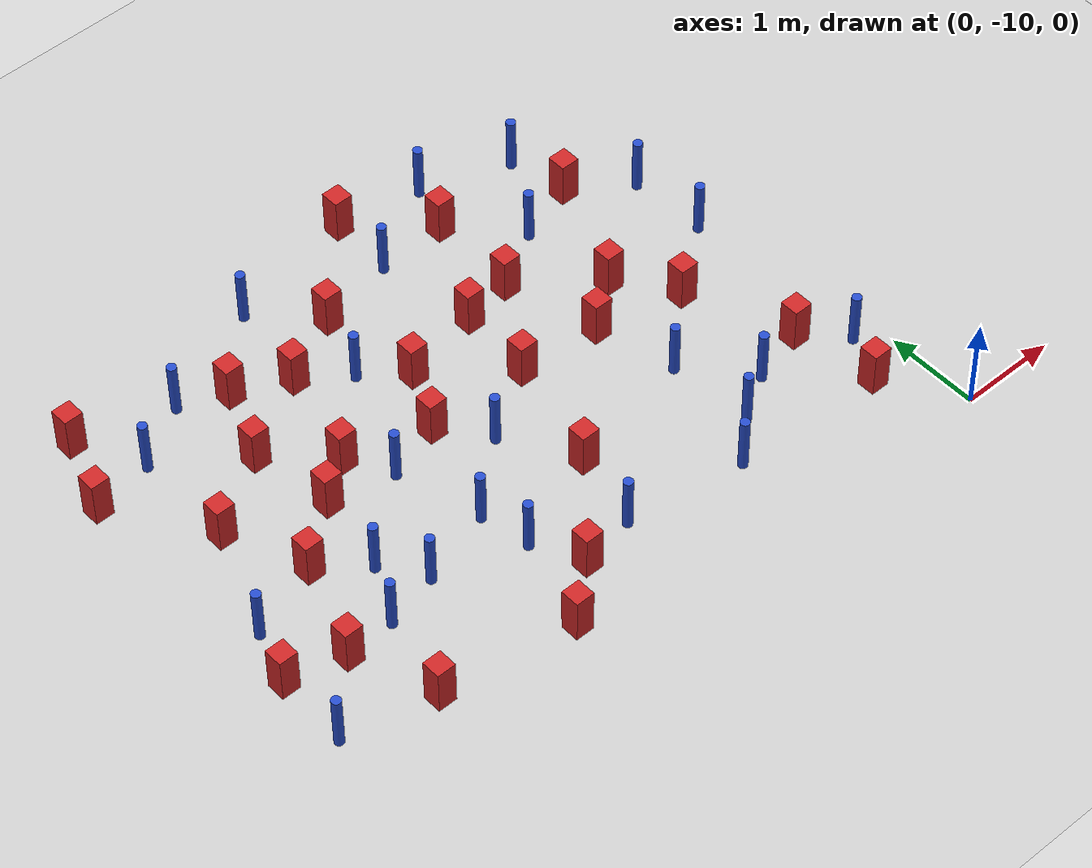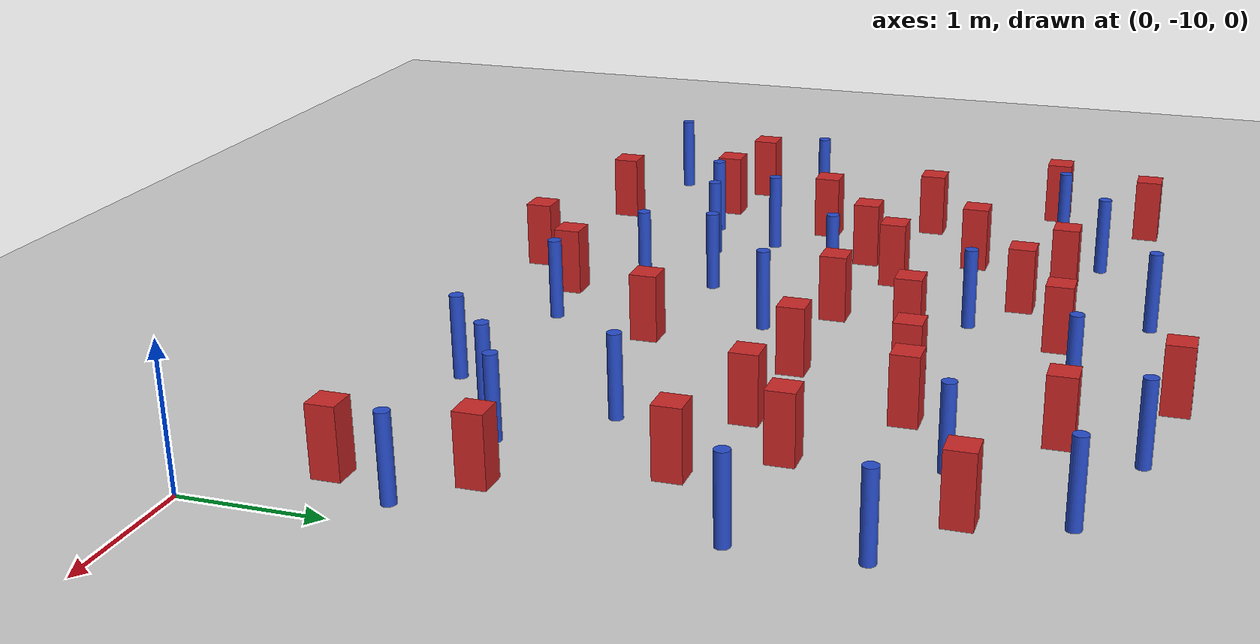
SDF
<sdf version="1.6">
 <world name="default">
  <model name="ground_plane">
   <static>1</static>
   <link name="link">
    <collision name="collision">
     <geometry><plane><normal>0 0 1</normal><size>100 100</size></plane></geometry>
     <surface><friction><ode><mu>100</mu><mu2>50</mu2></ode></friction></surface>
    </collision>
    <visual name="visual">
     <cast_shadows>0</cast_shadows>
     <geometry><plane><normal>0 0 1</normal><size>100 100</size></plane></geometry>
     <material>
      <ambient>1.0 1.0 1.0 1.0</ambient>
      <diffuse>0.8 0.8 0.8 1.0</diffuse>
      <specular>0.01 0.01 0.01 1.000000</specular>
     </material>
    </visual>
   </link>
  </model>
  <model name="square_post_obstacle2">
   <static>true</static>
   <pose>-1.50206599766 -6.68306396483 8.22691968438e-08 7.2212513382e-06 -7.54495500217e-07 2.29674213826e-05</pose>
   <link name="link">
    <pose>0 0 0.25 0 -0 0</pose>
    <inertial>
     <mass>100</mass>
     <inertia>
      <ixx>0.166667</ixx>
      <ixy>0</ixy>
      <ixz>0</ixz>
      <iyy>0.166667</iyy>
      <iyz>0</iyz>
      <izz>0.166667</izz>
     </inertia>
    </inertial>
    <collision name="collision"><geometry><box><size>.2 .2 .5</size></box></geometry></collision>
    <visual name="visual">
     <geometry><box><size>.2 .2 .5</size></box></geometry>
     <material>
      <script><name>Gazebo/Red</name><uri>file://media/materials/scripts/gazebo.material</uri></script>
     </material>
    </visual>
   </link>
  </model>
  <model name="pole_obstacle1">
   <static>true</static>
   <pose>-2.03950707412 -4.55169330116 2.88873142074e-08 -9.90536689575e-09 4.60219948995e-07 -1.20965994956e-07</pose>
   <link name="link">
    <pose>0 0 0.3 0 -0 0</pose>
    <inertial>
     <mass>1</mass>
     <inertia><ixx>0.145833</ixx><ixy>0</ixy><ixz>0</ixz><iyy>0.145833</iyy><iyz>0</iyz><izz>0.125</izz></inertia>
    </inertial>
    <collision name="collision">
     <geometry><cylinder><radius>0.05</radius><length>.6</length></cylinder></geometry>
    </collision>
    <visual name="visual">
     <geometry><cylinder><radius>0.05</radius><length>.6</length></cylinder></geometry>
     <material>
      <script><name>Gazebo/Blue</name><uri>file://media/materials/scripts/gazebo.material</uri></script>
     </material>
    </visual>
   </link>
  </model>
  <model name="square_post_obstacle4">
   <static>true</static>
   <pose>-3.1690122181 -8.15503335935 8.22691968438e-08 7.2212513382e-06 -7.54495500217e-07 2.29674213826e-05</pose>
   <link name="link">
    <pose>0 0 0.25 0 -0 0</pose>
    <inertial>
     <mass>100</mass>
     <inertia>
      <ixx>0.166667</ixx>
      <ixy>0</ixy>
      <ixz>0</ixz>
      <iyy>0.166667</iyy>
      <iyz>0</iyz>
      <izz>0.166667</izz>
     </inertia>
    </inertial>
    <collision name="collision"><geometry><box><size>.2 .2 .5</size></box></geometry></collision>
    <visual name="visual">
     <geometry><box><size>.2 .2 .5</size></box></geometry>
     <material>
      <script><name>Gazebo/Red</name><uri>file://media/materials/scripts/gazebo.material</uri></script>
     </material>
    </visual>
   </link>
  </model>
  <model name="square_post_obstacle12">
   <static>true</static>
   <pose>-2.00418320931 -7.06071781148 8.22691968438e-08 7.22125133819e-06 -7.54495500217e-07 2.29674213826e-05</pose>
   <link name="link">
    <pose>0 0 0.25 0 -0 0</pose>
    <inertial>
     <mass>100</mass>
     <inertia>
      <ixx>0.166667</ixx>
      <ixy>0</ixy>
      <ixz>0</ixz>
      <iyy>0.166667</iyy>
      <iyz>0</iyz>
      <izz>0.166667</izz>
     </inertia>
    </inertial>
    <collision name="collision"><geometry><box><size>.2 .2 .5</size></box></geometry></collision>
    <visual name="visual">
     <geometry><box><size>.2 .2 .5</size></box></geometry>
     <material>
      <script><name>Gazebo/Red</name><uri>file://media/materials/scripts/gazebo.material</uri></script>
     </material>
    </visual>
   </link>
  </model>
  <model name="pole_obstacle11">
   <static>true</static>
   <pose>-6.13879291941 -5.5250848036 2.88873142074e-08 -9.90536690842e-09 4.60219948965e-07 -1.20965994976e-07</pose>
   <link name="link">
    <pose>0 0 0.3 0 -0 0</pose>
    <inertial>
     <mass>1</mass>
     <inertia><ixx>0.145833</ixx><ixy>0</ixy><ixz>0</ixz><iyy>0.145833</iyy><iyz>0</iyz><izz>0.125</izz></inertia>
    </inertial>
    <collision name="collision">
     <geometry><cylinder><radius>0.05</radius><length>.6</length></cylinder></geometry>
    </collision>
    <visual name="visual">
     <geometry><cylinder><radius>0.05</radius><length>.6</length></cylinder></geometry>
     <material>
      <script><name>Gazebo/Blue</name><uri>file://media/materials/scripts/gazebo.material</uri></script>
     </material>
    </visual>
   </link>
  </model>
  <model name="pole_obstacle13">
   <static>true</static>
   <pose>-5.07513045503 -8.23710917946 2.88873142074e-08 -9.9053668967e-09 4.60219948993e-07 -1.20965994957e-07</pose>
   <link name="link">
    <pose>0 0 0.3 0 -0 0</pose>
    <inertial>
     <mass>1</mass>
     <inertia><ixx>0.145833</ixx><ixy>0</ixy><ixz>0</ixz><iyy>0.145833</iyy><iyz>0</iyz><izz>0.125</izz></inertia>
    </inertial>
    <collision name="collision">
     <geometry><cylinder><radius>0.05</radius><length>.6</length></cylinder></geometry>
    </collision>
    <visual name="visual">
     <geometry><cylinder><radius>0.05</radius><length>.6</length></cylinder></geometry>
     <material>
      <script><name>Gazebo/Blue</name><uri>file://media/materials/scripts/gazebo.material</uri></script>
     </material>
    </visual>
   </link>
  </model>
  <model name="pole_obstacle14">
   <static>true</static>
   <pose>-1.77880233781 -7.88300365105 2.88873142074e-08 -9.90536689852e-09 4.60219948989e-07 -1.2096599496e-07</pose>
   <link name="link">
    <pose>0 0 0.3 0 -0 0</pose>
    <inertial>
     <mass>1</mass>
     <inertia><ixx>0.145833</ixx><ixy>0</ixy><ixz>0</ixz><iyy>0.145833</iyy><iyz>0</iyz><izz>0.125</izz></inertia>
    </inertial>
    <collision name="collision">
     <geometry><cylinder><radius>0.05</radius><length>.6</length></cylinder></geometry>
    </collision>
    <visual name="visual">
     <geometry><cylinder><radius>0.05</radius><length>.6</length></cylinder></geometry>
     <material>
      <script><name>Gazebo/Blue</name><uri>file://media/materials/scripts/gazebo.material</uri></script>
     </material>
    </visual>
   </link>
  </model>
  <model name="pole_obstacle35">
   <static>true</static>
   <pose>-1.12154431042 -4.86890500265 2.88873142074e-08 -9.90536689852e-09 4.60219948989e-07 -1.2096599496e-07</pose>
   <link name="link">
    <pose>0 0 0.3 0 -0 0</pose>
    <inertial>
     <mass>1</mass>
     <inertia><ixx>0.145833</ixx><ixy>0</ixy><ixz>0</ixz><iyy>0.145833</iyy><iyz>0</iyz><izz>0.125</izz></inertia>
    </inertial>
    <collision name="collision">
     <geometry><cylinder><radius>0.05</radius><length>.6</length></cylinder></geometry>
    </collision>
    <visual name="visual">
     <geometry><cylinder><radius>0.05</radius><length>.6</length></cylinder></geometry>
     <material>
      <script><name>Gazebo/Blue</name><uri>file://media/materials/scripts/gazebo.material</uri></script>
     </material>
    </visual>
   </link>
  </model>
  <model name="pole_obstacle36">
   <static>true</static>
   <pose>-4.0327225855 -5.96429115288 2.88873142074e-08 -9.90536691069e-09 4.6021994896e-07 -1.20965994979e-07</pose>
   <link name="link">
    <pose>0 0 0.3 0 -0 0</pose>
    <inertial>
     <mass>1</mass>
     <inertia><ixx>0.145833</ixx><ixy>0</ixy><ixz>0</ixz><iyy>0.145833</iyy><iyz>0</iyz><izz>0.125</izz></inertia>
    </inertial>
    <collision name="collision">
     <geometry><cylinder><radius>0.05</radius><length>.6</length></cylinder></geometry>
    </collision>
    <visual name="visual">
     <geometry><cylinder><radius>0.05</radius><length>.6</length></cylinder></geometry>
     <material>
      <script><name>Gazebo/Blue</name><uri>file://media/materials/scripts/gazebo.material</uri></script>
     </material>
    </visual>
   </link>
  </model>
  <model name="pole_obstacle37">
   <static>true</static>
   <pose>-6.58687986525 -7.69311509264 2.88873142074e-08 -9.90536690842e-09 4.60219948965e-07 -1.20965994976e-07</pose>
   <link name="link">
    <pose>0 0 0.3 0 -0 0</pose>
    <inertial>
     <mass>1</mass>
     <inertia><ixx>0.145833</ixx><ixy>0</ixy><ixz>0</ixz><iyy>0.145833</iyy><iyz>0</iyz><izz>0.125</izz></inertia>
    </inertial>
    <collision name="collision">
     <geometry><cylinder><radius>0.05</radius><length>.6</length></cylinder></geometry>
    </collision>
    <visual name="visual">
     <geometry><cylinder><radius>0.05</radius><length>.6</length></cylinder></geometry>
     <material>
      <script><name>Gazebo/Blue</name><uri>file://media/materials/scripts/gazebo.material</uri></script>
     </material>
    </visual>
   </link>
  </model>
  <model name="square_post_obstacle38">
   <static>true</static>
   <pose>-2.26851469098 -6.07438547937 8.22691968438e-08 7.2212513382e-06 -7.54495500217e-07 2.29674213826e-05</pose>
   <link name="link">
    <pose>0 0 0.25 0 -0 0</pose>
    <inertial>
     <mass>100</mass>
     <inertia>
      <ixx>0.166667</ixx>
      <ixy>0</ixy>
      <ixz>0</ixz>
      <iyy>0.166667</iyy>
      <iyz>0</iyz>
      <izz>0.166667</izz>
     </inertia>
    </inertial>
    <collision name="collision"><geometry><box><size>.2 .2 .5</size></box></geometry></collision>
    <visual name="visual">
     <geometry><box><size>.2 .2 .5</size></box></geometry>
     <material>
      <script><name>Gazebo/Red</name><uri>file://media/materials/scripts/gazebo.material</uri></script>
     </material>
    </visual>
   </link>
  </model>
  <model name="pole_obstacle45">
   <static>true</static>
   <pose>-0.405635060372 -5.90418708495 2.88873142074e-08 -9.90536689683e-09 4.60219948993e-07 -1.20965994957e-07</pose>
   <link name="link">
    <pose>0 0 0.3 0 -0 0</pose>
    <inertial>
     <mass>1</mass>
     <inertia><ixx>0.145833</ixx><ixy>0</ixy><ixz>0</ixz><iyy>0.145833</iyy><iyz>0</iyz><izz>0.125</izz></inertia>
    </inertial>
    <collision name="collision">
     <geometry><cylinder><radius>0.05</radius><length>.6</length></cylinder></geometry>
    </collision>
    <visual name="visual">
     <geometry><cylinder><radius>0.05</radius><length>.6</length></cylinder></geometry>
     <material>
      <script><name>Gazebo/Blue</name><uri>file://media/materials/scripts/gazebo.material</uri></script>
     </material>
    </visual>
   </link>
  </model>
  <model name="square_post_obstacle44">
   <static>true</static>
   <pose>-1.01084193796 -5.50591038556 8.22691968438e-08 7.2212513382e-06 -7.54495500217e-07 2.29674213826e-05</pose>
   <link name="link">
    <pose>0 0 0.25 0 -0 0</pose>
    <inertial>
     <mass>100</mass>
     <inertia>
      <ixx>0.166667</ixx>
      <ixy>0</ixy>
      <ixz>0</ixz>
      <iyy>0.166667</iyy>
      <iyz>0</iyz>
      <izz>0.166667</izz>
     </inertia>
    </inertial>
    <collision name="collision"><geometry><box><size>.2 .2 .5</size></box></geometry></collision>
    <visual name="visual">
     <geometry><box><size>.2 .2 .5</size></box></geometry>
     <material>
      <script><name>Gazebo/Red</name><uri>file://media/materials/scripts/gazebo.material</uri></script>
     </material>
    </visual>
   </link>
  </model>
  <model name="square_post_obstacle45">
   <static>true</static>
   <pose>-3.64040078298 -6.33008832239 8.22691968438e-08 7.2212513382e-06 -7.54495500217e-07 2.29674213826e-05</pose>
   <link name="link">
    <pose>0 0 0.25 0 -0 0</pose>
    <inertial>
     <mass>100</mass>
     <inertia>
      <ixx>0.166667</ixx>
      <ixy>0</ixy>
      <ixz>0</ixz>
      <iyy>0.166667</iyy>
      <iyz>0</iyz>
      <izz>0.166667</izz>
     </inertia>
    </inertial>
    <collision name="collision"><geometry><box><size>.2 .2 .5</size></box></geometry></collision>
    <visual name="visual">
     <geometry><box><size>.2 .2 .5</size></box></geometry>
     <material>
      <script><name>Gazebo/Red</name><uri>file://media/materials/scripts/gazebo.material</uri></script>
     </material>
    </visual>
   </link>
  </model>
  <model name="pole_obstacle50">
   <static>true</static>
   <pose>-0.360635065036 -6.72433066485 2.88873142074e-08 -9.90536689683e-09 4.60219948993e-07 -1.20965994957e-07</pose>
   <link name="link">
    <pose>0 0 0.3 0 -0 0</pose>
    <inertial>
     <mass>1</mass>
     <inertia><ixx>0.145833</ixx><ixy>0</ixy><ixz>0</ixz><iyy>0.145833</iyy><iyz>0</iyz><izz>0.125</izz></inertia>
    </inertial>
    <collision name="collision">
     <geometry><cylinder><radius>0.05</radius><length>.6</length></cylinder></geometry>
    </collision>
    <visual name="visual">
     <geometry><cylinder><radius>0.05</radius><length>.6</length></cylinder></geometry>
     <material>
      <script><name>Gazebo/Blue</name><uri>file://media/materials/scripts/gazebo.material</uri></script>
     </material>
    </visual>
   </link>
  </model>
  <model name="square_post_obstacle53">
   <static>true</static>
   <pose>-5.21181510723 -6.98321677522 8.22691968438e-08 7.22125133819e-06 -7.54495500217e-07 2.29674213826e-05</pose>
   <link name="link">
    <pose>0 0 0.25 0 -0 0</pose>
    <inertial>
     <mass>100</mass>
     <inertia>
      <ixx>0.166667</ixx>
      <ixy>0</ixy>
      <ixz>0</ixz>
      <iyy>0.166667</iyy>
      <iyz>0</iyz>
      <izz>0.166667</izz>
     </inertia>
    </inertial>
    <collision name="collision"><geometry><box><size>.2 .2 .5</size></box></geometry></collision>
    <visual name="visual">
     <geometry><box><size>.2 .2 .5</size></box></geometry>
     <material>
      <script><name>Gazebo/Red</name><uri>file://media/materials/scripts/gazebo.material</uri></script>
     </material>
    </visual>
   </link>
  </model>
  <model name="square_post_obstacle72">
   <static>true</static>
   <pose>-6.49690147739 -4.86832967605 8.22691968438e-08 7.22125133819e-06 -7.54495500217e-07 2.29674213826e-05</pose>
   <link name="link">
    <pose>0 0 0.25 0 -0 0</pose>
    <inertial>
     <mass>100</mass>
     <inertia>
      <ixx>0.166667</ixx>
      <ixy>0</ixy>
      <ixz>0</ixz>
      <iyy>0.166667</iyy>
      <iyz>0</iyz>
      <izz>0.166667</izz>
     </inertia>
    </inertial>
    <collision name="collision"><geometry><box><size>.2 .2 .5</size></box></geometry></collision>
    <visual name="visual">
     <geometry><box><size>.2 .2 .5</size></box></geometry>
     <material>
      <script><name>Gazebo/Red</name><uri>file://media/materials/scripts/gazebo.material</uri></script>
     </material>
    </visual>
   </link>
  </model>
  <model name="pole_obstacle75">
   <static>true</static>
   <pose>-4.32951539088 -4.67594757049 2.88873142074e-08 -9.90536690842e-09 4.60219948965e-07 -1.20965994976e-07</pose>
   <link name="link">
    <pose>0 0 0.3 0 -0 0</pose>
    <inertial>
     <mass>1</mass>
     <inertia><ixx>0.145833</ixx><ixy>0</ixy><ixz>0</ixz><iyy>0.145833</iyy><iyz>0</iyz><izz>0.125</izz></inertia>
    </inertial>
    <collision name="collision">
     <geometry><cylinder><radius>0.05</radius><length>.6</length></cylinder></geometry>
    </collision>
    <visual name="visual">
     <geometry><cylinder><radius>0.05</radius><length>.6</length></cylinder></geometry>
     <material>
      <script><name>Gazebo/Blue</name><uri>file://media/materials/scripts/gazebo.material</uri></script>
     </material>
    </visual>
   </link>
  </model>
  <model name="pole_obstacle78">
   <static>true</static>
   <pose>-1.63405915105 -5.69855744339 2.88873142074e-08 -9.90536689852e-09 4.60219948989e-07 -1.2096599496e-07</pose>
   <link name="link">
    <pose>0 0 0.3 0 -0 0</pose>
    <inertial>
     <mass>1</mass>
     <inertia><ixx>0.145833</ixx><ixy>0</ixy><ixz>0</ixz><iyy>0.145833</iyy><iyz>0</iyz><izz>0.125</izz></inertia>
    </inertial>
    <collision name="collision">
     <geometry><cylinder><radius>0.05</radius><length>.6</length></cylinder></geometry>
    </collision>
    <visual name="visual">
     <geometry><cylinder><radius>0.05</radius><length>.6</length></cylinder></geometry>
     <material>
      <script><name>Gazebo/Blue</name><uri>file://media/materials/scripts/gazebo.material</uri></script>
     </material>
    </visual>
   </link>
  </model>
  <model name="square_post_obstacle78">
   <static>true</static>
   <pose>-5.05144092422 -5.38398361425 8.22691968438e-08 7.22125133819e-06 -7.54495500217e-07 2.29674213826e-05</pose>
   <link name="link">
    <pose>0 0 0.25 0 -0 0</pose>
    <inertial>
     <mass>100</mass>
     <inertia>
      <ixx>0.166667</ixx>
      <ixy>0</ixy>
      <ixz>0</ixz>
      <iyy>0.166667</iyy>
      <iyz>0</iyz>
      <izz>0.166667</izz>
     </inertia>
    </inertial>
    <collision name="collision"><geometry><box><size>.2 .2 .5</size></box></geometry></collision>
    <visual name="visual">
     <geometry><box><size>.2 .2 .5</size></box></geometry>
     <material>
      <script><name>Gazebo/Red</name><uri>file://media/materials/scripts/gazebo.material</uri></script>
     </material>
    </visual>
   </link>
  </model>
  <model name="pole_obstacle83">
   <static>true</static>
   <pose>-4.52612757166 -7.11670466127 2.88873142074e-08 -9.90536690842e-09 4.60219948965e-07 -1.20965994976e-07</pose>
   <link name="link">
    <pose>0 0 0.3 0 -0 0</pose>
    <inertial>
     <mass>1</mass>
     <inertia><ixx>0.145833</ixx><ixy>0</ixy><ixz>0</ixz><iyy>0.145833</iyy><iyz>0</iyz><izz>0.125</izz></inertia>
    </inertial>
    <collision name="collision">
     <geometry><cylinder><radius>0.05</radius><length>.6</length></cylinder></geometry>
    </collision>
    <visual name="visual">
     <geometry><cylinder><radius>0.05</radius><length>.6</length></cylinder></geometry>
     <material>
      <script><name>Gazebo/Blue</name><uri>file://media/materials/scripts/gazebo.material</uri></script>
     </material>
    </visual>
   </link>
  </model>
  <model name="square_post_obstacle86">
   <static>true</static>
   <pose>-4.46939758915 -9.49752148642 8.22691968438e-08 7.22125133819e-06 -7.54495500217e-07 2.29674213826e-05</pose>
   <link name="link">
    <pose>0 0 0.25 0 -0 0</pose>
    <inertial>
     <mass>100</mass>
     <inertia>
      <ixx>0.166667</ixx>
      <ixy>0</ixy>
      <ixz>0</ixz>
      <iyy>0.166667</iyy>
      <iyz>0</iyz>
      <izz>0.166667</izz>
     </inertia>
    </inertial>
    <collision name="collision"><geometry><box><size>.2 .2 .5</size></box></geometry></collision>
    <visual name="visual">
     <geometry><box><size>.2 .2 .5</size></box></geometry>
     <material>
      <script><name>Gazebo/Red</name><uri>file://media/materials/scripts/gazebo.material</uri></script>
     </material>
    </visual>
   </link>
  </model>
  <model name="pole_obstacle105">
   <static>true</static>
   <pose>-0.278596874031 -8.74142404617 2.88873142074e-08 -9.90536690955e-09 4.60219948963e-07 -1.20965994979e-07</pose>
   <link name="link">
    <pose>0 0 0.3 0 -0 0</pose>
    <inertial>
     <mass>1</mass>
     <inertia><ixx>0.145833</ixx><ixy>0</ixy><ixz>0</ixz><iyy>0.145833</iyy><iyz>0</iyz><izz>0.125</izz></inertia>
    </inertial>
    <collision name="collision">
     <geometry><cylinder><radius>0.05</radius><length>.6</length></cylinder></geometry>
    </collision>
    <visual name="visual">
     <geometry><cylinder><radius>0.05</radius><length>.6</length></cylinder></geometry>
     <material>
      <script><name>Gazebo/Blue</name><uri>file://media/materials/scripts/gazebo.material</uri></script>
     </material>
    </visual>
   </link>
  </model>
  <model name="pole_obstacle106">
   <static>true</static>
   <pose>-2.95328183018 -5.09054933305 2.88873142074e-08 -9.90536689859e-09 4.60219948989e-07 -1.20965994961e-07</pose>
   <link name="link">
    <pose>0 0 0.3 0 -0 0</pose>
    <inertial>
     <mass>1</mass>
     <inertia><ixx>0.145833</ixx><ixy>0</ixy><ixz>0</ixz><iyy>0.145833</iyy><iyz>0</iyz><izz>0.125</izz></inertia>
    </inertial>
    <collision name="collision">
     <geometry><cylinder><radius>0.05</radius><length>.6</length></cylinder></geometry>
    </collision>
    <visual name="visual">
     <geometry><cylinder><radius>0.05</radius><length>.6</length></cylinder></geometry>
     <material>
      <script><name>Gazebo/Blue</name><uri>file://media/materials/scripts/gazebo.material</uri></script>
     </material>
    </visual>
   </link>
  </model>
  <model name="square_post_obstacle95">
   <static>true</static>
   <pose>-5.36066143499 -6.1321104564 8.22691968438e-08 7.22125133819e-06 -7.54495500217e-07 2.29674213826e-05</pose>
   <link name="link">
    <pose>0 0 0.25 0 -0 0</pose>
    <inertial>
     <mass>100</mass>
     <inertia>
      <ixx>0.166667</ixx>
      <ixy>0</ixy>
      <ixz>0</ixz>
      <iyy>0.166667</iyy>
      <iyz>0</iyz>
      <izz>0.166667</izz>
     </inertia>
    </inertial>
    <collision name="collision"><geometry><box><size>.2 .2 .5</size></box></geometry></collision>
    <visual name="visual">
     <geometry><box><size>.2 .2 .5</size></box></geometry>
     <material>
      <script><name>Gazebo/Red</name><uri>file://media/materials/scripts/gazebo.material</uri></script>
     </material>
    </visual>
   </link>
  </model>
  <model name="square_post_obstacle97">
   <static>true</static>
   <pose>-3.94150272827 -9.04603015363 8.22691968438e-08 7.22125133819e-06 -7.54495500217e-07 2.29674213826e-05</pose>
   <link name="link">
    <pose>0 0 0.25 0 -0 0</pose>
    <inertial>
     <mass>100</mass>
     <inertia>
      <ixx>0.166667</ixx>
      <ixy>0</ixy>
      <ixz>0</ixz>
      <iyy>0.166667</iyy>
      <iyz>0</iyz>
      <izz>0.166667</izz>
     </inertia>
    </inertial>
    <collision name="collision"><geometry><box><size>.2 .2 .5</size></box></geometry></collision>
    <visual name="visual">
     <geometry><box><size>.2 .2 .5</size></box></geometry>
     <material>
      <script><name>Gazebo/Red</name><uri>file://media/materials/scripts/gazebo.material</uri></script>
     </material>
    </visual>
   </link>
  </model>
  <model name="pole_obstacle119">
   <static>true</static>
   <pose>-2.10447825759 -9.13763736625 2.88873142074e-08 -9.90536692318e-09 4.6021994893e-07 -1.20965994988e-07</pose>
   <link name="link">
    <pose>0 0 0.3 0 -0 0</pose>
    <inertial>
     <mass>1</mass>
     <inertia><ixx>0.145833</ixx><ixy>0</ixy><ixz>0</ixz><iyy>0.145833</iyy><iyz>0</iyz><izz>0.125</izz></inertia>
    </inertial>
    <collision name="collision">
     <geometry><cylinder><radius>0.05</radius><length>.6</length></cylinder></geometry>
    </collision>
    <visual name="visual">
     <geometry><cylinder><radius>0.05</radius><length>.6</length></cylinder></geometry>
     <material>
      <script><name>Gazebo/Blue</name><uri>file://media/materials/scripts/gazebo.material</uri></script>
     </material>
    </visual>
   </link>
  </model>
  <model name="square_post_obstacle110">
   <static>true</static>
   <pose>-3.79512731876 -5.28460834799 8.22691968438e-08 7.2212513382e-06 -7.54495500217e-07 2.29674213826e-05</pose>
   <link name="link">
    <pose>0 0 0.25 0 -0 0</pose>
    <inertial>
     <mass>100</mass>
     <inertia>
      <ixx>0.166667</ixx>
      <ixy>0</ixy>
      <ixz>0</ixz>
      <iyy>0.166667</iyy>
      <iyz>0</iyz>
      <izz>0.166667</izz>
     </inertia>
    </inertial>
    <collision name="collision"><geometry><box><size>.2 .2 .5</size></box></geometry></collision>
    <visual name="visual">
     <geometry><box><size>.2 .2 .5</size></box></geometry>
     <material>
      <script><name>Gazebo/Red</name><uri>file://media/materials/scripts/gazebo.material</uri></script>
     </material>
    </visual>
   </link>
  </model>
  <model name="pole_obstacle121">
   <static>true</static>
   <pose>-3.35119066374 -8.93696829047 2.88873142074e-08 -9.9053668994e-09 4.60219948987e-07 -1.20965994963e-07</pose>
   <link name="link">
    <pose>0 0 0.3 0 -0 0</pose>
    <inertial>
     <mass>1</mass>
     <inertia><ixx>0.145833</ixx><ixy>0</ixy><ixz>0</ixz><iyy>0.145833</iyy><iyz>0</iyz><izz>0.125</izz></inertia>
    </inertial>
    <collision name="collision">
     <geometry><cylinder><radius>0.05</radius><length>.6</length></cylinder></geometry>
    </collision>
    <visual name="visual">
     <geometry><cylinder><radius>0.05</radius><length>.6</length></cylinder></geometry>
     <material>
      <script><name>Gazebo/Blue</name><uri>file://media/materials/scripts/gazebo.material</uri></script>
     </material>
    </visual>
   </link>
  </model>
  <model name="pole_obstacle122">
   <static>true</static>
   <pose>-1.69690613669 -8.76684942455 2.88873142074e-08 -9.90536690474e-09 4.60219948974e-07 -1.2096599497e-07</pose>
   <link name="link">
    <pose>0 0 0.3 0 -0 0</pose>
    <inertial>
     <mass>1</mass>
     <inertia><ixx>0.145833</ixx><ixy>0</ixy><ixz>0</ixz><iyy>0.145833</iyy><iyz>0</iyz><izz>0.125</izz></inertia>
    </inertial>
    <collision name="collision">
     <geometry><cylinder><radius>0.05</radius><length>.6</length></cylinder></geometry>
    </collision>
    <visual name="visual">
     <geometry><cylinder><radius>0.05</radius><length>.6</length></cylinder></geometry>
     <material>
      <script><name>Gazebo/Blue</name><uri>file://media/materials/scripts/gazebo.material</uri></script>
     </material>
    </visual>
   </link>
  </model>
  <model name="square_post_obstacle113">
   <static>true</static>
   <pose>-4.79325177238 -6.68139201967 8.22691968438e-08 7.22125133819e-06 -7.54495500217e-07 2.29674213826e-05</pose>
   <link name="link">
    <pose>0 0 0.25 0 -0 0</pose>
    <inertial>
     <mass>100</mass>
     <inertia>
      <ixx>0.166667</ixx>
      <ixy>0</ixy>
      <ixz>0</ixz>
      <iyy>0.166667</iyy>
      <iyz>0</iyz>
      <izz>0.166667</izz>
     </inertia>
    </inertial>
    <collision name="collision"><geometry><box><size>.2 .2 .5</size></box></geometry></collision>
    <visual name="visual">
     <geometry><box><size>.2 .2 .5</size></box></geometry>
     <material>
      <script><name>Gazebo/Red</name><uri>file://media/materials/scripts/gazebo.material</uri></script>
     </material>
    </visual>
   </link>
  </model>
  <model name="pole_obstacle129">
   <static>true</static>
   <pose>-5.35930894777 -7.80451027704 2.88873142074e-08 -9.90536690842e-09 4.60219948965e-07 -1.20965994976e-07</pose>
   <link name="link">
    <pose>0 0 0.3 0 -0 0</pose>
    <inertial>
     <mass>1</mass>
     <inertia><ixx>0.145833</ixx><ixy>0</ixy><ixz>0</ixz><iyy>0.145833</iyy><iyz>0</iyz><izz>0.125</izz></inertia>
    </inertial>
    <collision name="collision">
     <geometry><cylinder><radius>0.05</radius><length>.6</length></cylinder></geometry>
    </collision>
    <visual name="visual">
     <geometry><cylinder><radius>0.05</radius><length>.6</length></cylinder></geometry>
     <material>
      <script><name>Gazebo/Blue</name><uri>file://media/materials/scripts/gazebo.material</uri></script>
     </material>
    </visual>
   </link>
  </model>
  <model name="pole_obstacle132">
   <static>true</static>
   <pose>-4.28455678392 -8.01030966381 2.88873142074e-08 -9.9053669103e-09 4.60219948961e-07 -1.20965994981e-07</pose>
   <link name="link">
    <pose>0 0 0.3 0 -0 0</pose>
    <inertial>
     <mass>1</mass>
     <inertia><ixx>0.145833</ixx><ixy>0</ixy><ixz>0</ixz><iyy>0.145833</iyy><iyz>0</iyz><izz>0.125</izz></inertia>
    </inertial>
    <collision name="collision">
     <geometry><cylinder><radius>0.05</radius><length>.6</length></cylinder></geometry>
    </collision>
    <visual name="visual">
     <geometry><cylinder><radius>0.05</radius><length>.6</length></cylinder></geometry>
     <material>
      <script><name>Gazebo/Blue</name><uri>file://media/materials/scripts/gazebo.material</uri></script>
     </material>
    </visual>
   </link>
  </model>
  <model name="pole_obstacle134">
   <static>true</static>
   <pose>-3.57463333953 -7.40285049455 2.88873142074e-08 -9.90536689859e-09 4.60219948989e-07 -1.20965994961e-07</pose>
   <link name="link">
    <pose>0 0 0.3 0 -0 0</pose>
    <inertial>
     <mass>1</mass>
     <inertia><ixx>0.145833</ixx><ixy>0</ixy><ixz>0</ixz><iyy>0.145833</iyy><iyz>0</iyz><izz>0.125</izz></inertia>
    </inertial>
    <collision name="collision">
     <geometry><cylinder><radius>0.05</radius><length>.6</length></cylinder></geometry>
    </collision>
    <visual name="visual">
     <geometry><cylinder><radius>0.05</radius><length>.6</length></cylinder></geometry>
     <material>
      <script><name>Gazebo/Blue</name><uri>file://media/materials/scripts/gazebo.material</uri></script>
     </material>
    </visual>
   </link>
  </model>
  <model name="square_post_obstacle119">
   <static>true</static>
   <pose>-2.86901836433 -6.98460509615 8.22691968438e-08 7.22125133819e-06 -7.54495500217e-07 2.29674213826e-05</pose>
   <link name="link">
    <pose>0 0 0.25 0 -0 0</pose>
    <inertial>
     <mass>100</mass>
     <inertia>
      <ixx>0.166667</ixx>
      <ixy>0</ixy>
      <ixz>0</ixz>
      <iyy>0.166667</iyy>
      <iyz>0</iyz>
      <izz>0.166667</izz>
     </inertia>
    </inertial>
    <collision name="collision"><geometry><box><size>.2 .2 .5</size></box></geometry></collision>
    <visual name="visual">
     <geometry><box><size>.2 .2 .5</size></box></geometry>
     <material>
      <script><name>Gazebo/Red</name><uri>file://media/materials/scripts/gazebo.material</uri></script>
     </material>
    </visual>
   </link>
  </model>
  <model name="square_post_obstacle130">
   <static>true</static>
   <pose>-1.0985752367 -7.2698871941 8.22691968438e-08 7.2212513382e-06 -7.54495500217e-07 2.29674213826e-05</pose>
   <link name="link">
    <pose>0 0 0.25 0 -0 0</pose>
    <inertial>
     <mass>100</mass>
     <inertia>
      <ixx>0.166667</ixx>
      <ixy>0</ixy>
      <ixz>0</ixz>
      <iyy>0.166667</iyy>
      <iyz>0</iyz>
      <izz>0.166667</izz>
     </inertia>
    </inertial>
    <collision name="collision"><geometry><box><size>.2 .2 .5</size></box></geometry></collision>
    <visual name="visual">
     <geometry><box><size>.2 .2 .5</size></box></geometry>
     <material>
      <script><name>Gazebo/Red</name><uri>file://media/materials/scripts/gazebo.material</uri></script>
     </material>
    </visual>
   </link>
  </model>
  <model name="square_post_obstacle144">
   <static>true</static>
   <pose>-5.82068554365 -7.45596008286 8.22691968438e-08 7.22125133819e-06 -7.54495500217e-07 2.29674213826e-05</pose>
   <link name="link">
    <pose>0 0 0.25 0 -0 0</pose>
    <inertial>
     <mass>100</mass>
     <inertia>
      <ixx>0.166667</ixx>
      <ixy>0</ixy>
      <ixz>0</ixz>
      <iyy>0.166667</iyy>
      <iyz>0</iyz>
      <izz>0.166667</izz>
     </inertia>
    </inertial>
    <collision name="collision"><geometry><box><size>.2 .2 .5</size></box></geometry></collision>
    <visual name="visual">
     <geometry><box><size>.2 .2 .5</size></box></geometry>
     <material>
      <script><name>Gazebo/Red</name><uri>file://media/materials/scripts/gazebo.material</uri></script>
     </material>
    </visual>
   </link>
  </model>
  <model name="square_post_obstacle145">
   <static>true</static>
   <pose>-2.93700570958 -4.41128676315 8.22691968438e-08 7.2212513382e-06 -7.54495500217e-07 2.29674213826e-05</pose>
   <link name="link">
    <pose>0 0 0.25 0 -0 0</pose>
    <inertial>
     <mass>100</mass>
     <inertia>
      <ixx>0.166667</ixx>
      <ixy>0</ixy>
      <ixz>0</ixz>
      <iyy>0.166667</iyy>
      <iyz>0</iyz>
      <izz>0.166667</izz>
     </inertia>
    </inertial>
    <collision name="collision"><geometry><box><size>.2 .2 .5</size></box></geometry></collision>
    <visual name="visual">
     <geometry><box><size>.2 .2 .5</size></box></geometry>
     <material>
      <script><name>Gazebo/Red</name><uri>file://media/materials/scripts/gazebo.material</uri></script>
     </material>
    </visual>
   </link>
  </model>
  <model name="pole_obstacle161">
   <static>true</static>
   <pose>-4.18016394669 -8.53159976662 2.88873142074e-08 -9.9053668967e-09 4.60219948993e-07 -1.20965994957e-07</pose>
   <link name="link">
    <pose>0 0 0.3 0 -0 0</pose>
    <inertial>
     <mass>1</mass>
     <inertia><ixx>0.145833</ixx><ixy>0</ixy><ixz>0</ixz><iyy>0.145833</iyy><iyz>0</iyz><izz>0.125</izz></inertia>
    </inertial>
    <collision name="collision">
     <geometry><cylinder><radius>0.05</radius><length>.6</length></cylinder></geometry>
    </collision>
    <visual name="visual">
     <geometry><cylinder><radius>0.05</radius><length>.6</length></cylinder></geometry>
     <material>
      <script><name>Gazebo/Blue</name><uri>file://media/materials/scripts/gazebo.material</uri></script>
     </material>
    </visual>
   </link>
  </model>
  <model name="pole_obstacle165">
   <static>true</static>
   <pose>-6.80098040949 -9.02961317501 2.88873142074e-08 -9.9053668967e-09 4.60219948993e-07 -1.20965994957e-07</pose>
   <link name="link">
    <pose>0 0 0.3 0 -0 0</pose>
    <inertial>
     <mass>1</mass>
     <inertia><ixx>0.145833</ixx><ixy>0</ixy><ixz>0</ixz><iyy>0.145833</iyy><iyz>0</iyz><izz>0.125</izz></inertia>
    </inertial>
    <collision name="collision">
     <geometry><cylinder><radius>0.05</radius><length>.6</length></cylinder></geometry>
    </collision>
    <visual name="visual">
     <geometry><cylinder><radius>0.05</radius><length>.6</length></cylinder></geometry>
     <material>
      <script><name>Gazebo/Blue</name><uri>file://media/materials/scripts/gazebo.material</uri></script>
     </material>
    </visual>
   </link>
  </model>
  <model name="square_post_obstacle159">
   <static>true</static>
   <pose>-6.1762874921 -8.41709378417 8.22691968438e-08 7.22125133819e-06 -7.54495500217e-07 2.29674213826e-05</pose>
   <link name="link">
    <pose>0 0 0.25 0 -0 0</pose>
    <inertial>
     <mass>100</mass>
     <inertia>
      <ixx>0.166667</ixx>
      <ixy>0</ixy>
      <ixz>0</ixz>
      <iyy>0.166667</iyy>
      <iyz>0</iyz>
      <izz>0.166667</izz>
     </inertia>
    </inertial>
    <collision name="collision"><geometry><box><size>.2 .2 .5</size></box></geometry></collision>
    <visual name="visual">
     <geometry><box><size>.2 .2 .5</size></box></geometry>
     <material>
      <script><name>Gazebo/Red</name><uri>file://media/materials/scripts/gazebo.material</uri></script>
     </material>
    </visual>
   </link>
  </model>
  <model name="square_post_obstacle170">
   <static>true</static>
   <pose>-6.78321740168 -5.63766093068 8.22691968438e-08 7.22125133819e-06 -7.54495500217e-07 2.29674213826e-05</pose>
   <link name="link">
    <pose>0 0 0.25 0 -0 0</pose>
    <inertial>
     <mass>100</mass>
     <inertia>
      <ixx>0.166667</ixx>
      <ixy>0</ixy>
      <ixz>0</ixz>
      <iyy>0.166667</iyy>
      <iyz>0</iyz>
      <izz>0.166667</izz>
     </inertia>
    </inertial>
    <collision name="collision"><geometry><box><size>.2 .2 .5</size></box></geometry></collision>
    <visual name="visual">
     <geometry><box><size>.2 .2 .5</size></box></geometry>
     <material>
      <script><name>Gazebo/Red</name><uri>file://media/materials/scripts/gazebo.material</uri></script>
     </material>
    </visual>
   </link>
  </model>
  <model name="square_post_obstacle176">
   <static>true</static>
   <pose>-3.9461495601 -6.95076237737 8.22691968438e-08 7.22125133819e-06 -7.54495500217e-07 2.29674213826e-05</pose>
   <link name="link">
    <pose>0 0 0.25 0 -0 0</pose>
    <inertial>
     <mass>100</mass>
     <inertia>
      <ixx>0.166667</ixx>
      <ixy>0</ixy>
      <ixz>0</ixz>
      <iyy>0.166667</iyy>
      <iyz>0</iyz>
      <izz>0.166667</izz>
     </inertia>
    </inertial>
    <collision name="collision"><geometry><box><size>.2 .2 .5</size></box></geometry></collision>
    <visual name="visual">
     <geometry><box><size>.2 .2 .5</size></box></geometry>
     <material>
      <script><name>Gazebo/Red</name><uri>file://media/materials/scripts/gazebo.material</uri></script>
     </material>
    </visual>
   </link>
  </model>
  <model name="square_post_obstacle189">
   <static>true</static>
   <pose>-0.677591131246 -8.35612023151 8.22691968438e-08 7.22125133819e-06 -7.54495500217e-07 2.29674213826e-05</pose>
   <link name="link">
    <pose>0 0 0.25 0 -0 0</pose>
    <inertial>
     <mass>100</mass>
     <inertia>
      <ixx>0.166667</ixx>
      <ixy>0</ixy>
      <ixz>0</ixz>
      <iyy>0.166667</iyy>
      <iyz>0</iyz>
      <izz>0.166667</izz>
     </inertia>
    </inertial>
    <collision name="collision"><geometry><box><size>.2 .2 .5</size></box></geometry></collision>
    <visual name="visual">
     <geometry><box><size>.2 .2 .5</size></box></geometry>
     <material>
      <script><name>Gazebo/Red</name><uri>file://media/materials/scripts/gazebo.material</uri></script>
     </material>
    </visual>
   </link>
  </model>
  <model name="square_post_obstacle191">
   <static>true</static>
   <pose>-4.50633171672 -5.64641873843 8.22691968438e-08 7.22125133819e-06 -7.54495500217e-07 2.29674213826e-05</pose>
   <link name="link">
    <pose>0 0 0.25 0 -0 0</pose>
    <inertial>
     <mass>100</mass>
     <inertia>
      <ixx>0.166667</ixx>
      <ixy>0</ixy>
      <ixz>0</ixz>
      <iyy>0.166667</iyy>
      <iyz>0</iyz>
      <izz>0.166667</izz>
     </inertia>
    </inertial>
    <collision name="collision"><geometry><box><size>.2 .2 .5</size></box></geometry></collision>
    <visual name="visual">
     <geometry><box><size>.2 .2 .5</size></box></geometry>
     <material>
      <script><name>Gazebo/Red</name><uri>file://media/materials/scripts/gazebo.material</uri></script>
     </material>
    </visual>
   </link>
  </model>
  <model name="square_post_obstacle193">
   <static>true</static>
   <pose>-6.14648635981 -6.62148529986 8.22691968438e-08 7.22125133819e-06 -7.54495500217e-07 2.29674213826e-05</pose>
   <link name="link">
    <pose>0 0 0.25 0 -0 0</pose>
    <inertial>
     <mass>100</mass>
     <inertia>
      <ixx>0.166667</ixx>
      <ixy>0</ixy>
      <ixz>0</ixz>
      <iyy>0.166667</iyy>
      <iyz>0</iyz>
      <izz>0.166667</izz>
     </inertia>
    </inertial>
    <collision name="collision"><geometry><box><size>.2 .2 .5</size></box></geometry></collision>
    <visual name="visual">
     <geometry><box><size>.2 .2 .5</size></box></geometry>
     <material>
      <script><name>Gazebo/Red</name><uri>file://media/materials/scripts/gazebo.material</uri></script>
     </material>
    </visual>
   </link>
  </model>
  <model name="square_post_obstacle197">
   <static>true</static>
   <pose>-5.86194049012 -9.26697462589 8.22691968438e-08 7.22125133819e-06 -7.54495500217e-07 2.29674213826e-05</pose>
   <link name="link">
    <pose>0 0 0.25 0 -0 0</pose>
    <inertial>
     <mass>100</mass>
     <inertia>
      <ixx>0.166667</ixx>
      <ixy>0</ixy>
      <ixz>0</ixz>
      <iyy>0.166667</iyy>
      <iyz>0</iyz>
      <izz>0.166667</izz>
     </inertia>
    </inertial>
    <collision name="collision"><geometry><box><size>.2 .2 .5</size></box></geometry></collision>
    <visual name="visual">
     <geometry><box><size>.2 .2 .5</size></box></geometry>
     <material>
      <script><name>Gazebo/Red</name><uri>file://media/materials/scripts/gazebo.material</uri></script>
     </material>
    </visual>
   </link>
  </model>
  <model name="square_post_obstacle198">
   <static>true</static>
   <pose>-2.80224381381 -6.1657276664 8.22691968438e-08 7.2212513382e-06 -7.54495500217e-07 2.29674213826e-05</pose>
   <link name="link">
    <pose>0 0 0.25 0 -0 0</pose>
    <inertial>
     <mass>100</mass>
     <inertia>
      <ixx>0.166667</ixx>
      <ixy>0</ixy>
      <ixz>0</ixz>
      <iyy>0.166667</iyy>
      <iyz>0</iyz>
      <izz>0.166667</izz>
     </inertia>
    </inertial>
    <collision name="collision"><geometry><box><size>.2 .2 .5</size></box></geometry></collision>
    <visual name="visual">
     <geometry><box><size>.2 .2 .5</size></box></geometry>
     <material>
      <script><name>Gazebo/Red</name><uri>file://media/materials/scripts/gazebo.material</uri></script>
     </material>
    </visual>
   </link>
  </model>
  <model name="square_post_obstacle199">
   <static>true</static>
   <pose>-6.77691039751 -8.26384793129 8.22691968438e-08 7.22125133819e-06 -7.54495500217e-07 2.29674213826e-05</pose>
   <link name="link">
    <pose>0 0 0.25 0 -0 0</pose>
    <inertial>
     <mass>100</mass>
     <inertia>
      <ixx>0.166667</ixx>
      <ixy>0</ixy>
      <ixz>0</ixz>
      <iyy>0.166667</iyy>
      <iyz>0</iyz>
      <izz>0.166667</izz>
     </inertia>
    </inertial>
    <collision name="collision"><geometry><box><size>.2 .2 .5</size></box></geometry></collision>
    <visual name="visual">
     <geometry><box><size>.2 .2 .5</size></box></geometry>
     <material>
      <script><name>Gazebo/Red</name><uri>file://media/materials/scripts/gazebo.material</uri></script>
     </material>
    </visual>
   </link>
  </model>
  <model name="square_post_obstacle202">
   <static>true</static>
   <pose>-0.525856884946 -9.24062648588 8.22691968438e-08 7.22125133819e-06 -7.54495500217e-07 2.29674213826e-05</pose>
   <link name="link">
    <pose>0 0 0.25 0 -0 0</pose>
    <inertial>
     <mass>100</mass>
     <inertia>
      <ixx>0.166667</ixx>
      <ixy>0</ixy>
      <ixz>0</ixz>
      <iyy>0.166667</iyy>
      <iyz>0</iyz>
      <izz>0.166667</izz>
     </inertia>
    </inertial>
    <collision name="collision"><geometry><box><size>.2 .2 .5</size></box></geometry></collision>
    <visual name="visual">
     <geometry><box><size>.2 .2 .5</size></box></geometry>
     <material>
      <script><name>Gazebo/Red</name><uri>file://media/materials/scripts/gazebo.material</uri></script>
     </material>
    </visual>
   </link>
  </model>
  <model name="square_post_obstacle210">
   <static>true</static>
   <pose>-2.22507606875 -5.08182786095 8.22691968438e-08 7.22125133819e-06 -7.54495500217e-07 2.29674213826e-05</pose>
   <link name="link">
    <pose>0 0 0.25 0 -0 0</pose>
    <inertial>
     <mass>100</mass>
     <inertia>
      <ixx>0.166667</ixx>
      <ixy>0</ixy>
      <ixz>0</ixz>
      <iyy>0.166667</iyy>
      <iyz>0</iyz>
      <izz>0.166667</izz>
     </inertia>
    </inertial>
    <collision name="collision"><geometry><box><size>.2 .2 .5</size></box></geometry></collision>
    <visual name="visual">
     <geometry><box><size>.2 .2 .5</size></box></geometry>
     <material>
      <script><name>Gazebo/Red</name><uri>file://media/materials/scripts/gazebo.material</uri></script>
     </material>
    </visual>
   </link>
  </model>
  <model name="pole_obstacle195">
   <static>true</static>
   <pose>-5.65097254128 -8.37720961007 2.88873142074e-08 -9.9053668967e-09 4.60219948993e-07 -1.20965994957e-07</pose>
   <link name="link">
    <pose>0 0 0.3 0 -0 0</pose>
    <inertial>
     <mass>1</mass>
     <inertia><ixx>0.145833</ixx><ixy>0</ixy><ixz>0</ixz><iyy>0.145833</iyy><iyz>0</iyz><izz>0.125</izz></inertia>
    </inertial>
    <collision name="collision">
     <geometry><cylinder><radius>0.05</radius><length>.6</length></cylinder></geometry>
    </collision>
    <visual name="visual">
     <geometry><cylinder><radius>0.05</radius><length>.6</length></cylinder></geometry>
     <material>
      <script><name>Gazebo/Blue</name><uri>file://media/materials/scripts/gazebo.material</uri></script>
     </material>
    </visual>
   </link>
  </model>
  <model name="pole_obstacle201">
   <static>true</static>
   <pose>-5.51156575981 -5.14973485758 2.88873142074e-08 -9.90536690842e-09 4.60219948965e-07 -1.20965994976e-07</pose>
   <link name="link">
    <pose>0 0 0.3 0 -0 0</pose>
    <inertial>
     <mass>1</mass>
     <inertia><ixx>0.145833</ixx><ixy>0</ixy><ixz>0</ixz><iyy>0.145833</iyy><iyz>0</iyz><izz>0.125</izz></inertia>
    </inertial>
    <collision name="collision">
     <geometry><cylinder><radius>0.05</radius><length>.6</length></cylinder></geometry>
    </collision>
    <visual name="visual">
     <geometry><cylinder><radius>0.05</radius><length>.6</length></cylinder></geometry>
     <material>
      <script><name>Gazebo/Blue</name><uri>file://media/materials/scripts/gazebo.material</uri></script>
     </material>
    </visual>
   </link>
  </model>
  <model name="pole_obstacle204">
   <static>true</static>
   <pose>-1.24474537988 -8.50198302335 2.88873142074e-08 -9.90536690474e-09 4.60219948974e-07 -1.2096599497e-07</pose>
   <link name="link">
    <pose>0 0 0.3 0 -0 0</pose>
    <inertial>
     <mass>1</mass>
     <inertia><ixx>0.145833</ixx><ixy>0</ixy><ixz>0</ixz><iyy>0.145833</iyy><iyz>0</iyz><izz>0.125</izz></inertia>
    </inertial>
    <collision name="collision">
     <geometry><cylinder><radius>0.05</radius><length>.6</length></cylinder></geometry>
    </collision>
    <visual name="visual">
     <geometry><cylinder><radius>0.05</radius><length>.6</length></cylinder></geometry>
     <material>
      <script><name>Gazebo/Blue</name><uri>file://media/materials/scripts/gazebo.material</uri></script>
     </material>
    </visual>
   </link>
  </model>
 </world>
</sdf>
